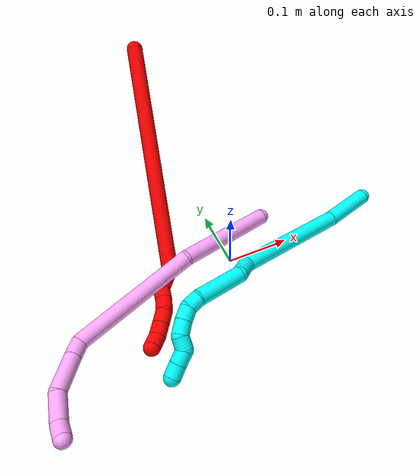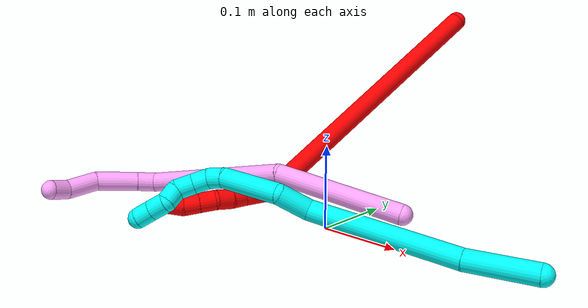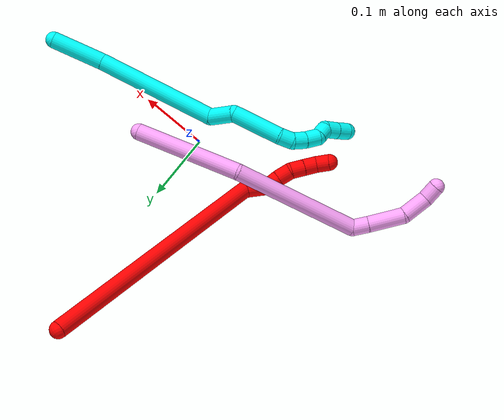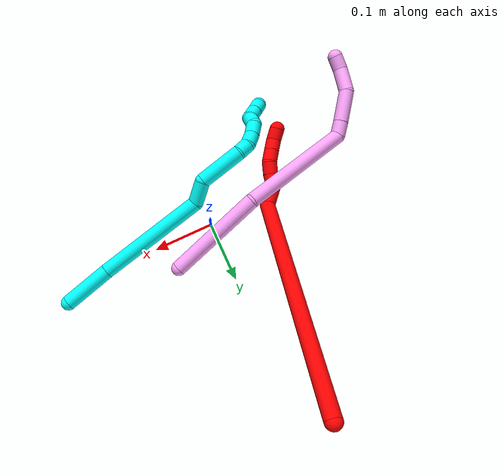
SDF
<sdf version="1.7">
 <world name="default">
  <model name="photoneo_s_sensor">
   <static>1</static>
   <pose>0 0 2 1.57079 1.57079 3.14159</pose>
   <link name="link">
    <inertial><mass>0.1</mass></inertial>
    <sensor name="sensor" type="depth">
     <update_rate>30</update_rate>
     <camera>
      <horizontal_fov>1.22</horizontal_fov>
      <image><width>1920</width><height>1200</height><format>B8G8R8</format></image>
      <clip><near>0.1</near><far>4</far></clip>
      <depth_camera><output>points</output></depth_camera>
     </camera>
     <plugin name="camera_plugin" filename="libgazebo_ros_depth_camera.so">
      <baseline>0.2</baseline>
      <alwaysOn>1</alwaysOn>
      <updateRate>0.0</updateRate>
      <cameraName>camera_ir</cameraName>
      <imageTopicName>/camera/color/image_raw</imageTopicName>
      <cameraInfoTopicName>/camera/color/camera_info</cameraInfoTopicName>
      <depthImageTopicName>/camera/depth/image_raw</depthImageTopicName>
      <depthImageCameraInfoTopicName>/camera/depth/camera_info</depthImageCameraInfoTopicName>
      <pointCloudTopicName>/camera/depth/points</pointCloudTopicName>
      <frameName>fr_optical</frameName>
      <pointCloudCutoff>0.1</pointCloudCutoff>
      <pointCloudCutoffMax>2.0</pointCloudCutoffMax>
      <distortionK1>0</distortionK1>
      <distortionK2>0</distortionK2>
      <distortionK3>0</distortionK3>
      <distortionT1>0</distortionT1>
      <distortionT2>0</distortionT2>
      <CxPrime>0</CxPrime>
      <Cx>0</Cx>
      <Cy>0</Cy>
      <focalLength>0</focalLength>
      <hackBaseline>0</hackBaseline>
     </plugin>
    </sensor>
   </link>
  </model>
  <model name="bin">
   <static>1</static>
   <link name="bottom">
    <collision name="collision-bottom">
     <pose>0 0 -0.01 0 -0 0</pose>
     <geometry><box><size>0.8 0.6 0.02</size></box></geometry>
     <surface>
      <friction><ode><mu>100</mu><mu2>100</mu2></ode></friction>
      <contact><collide_bitmask>65535</collide_bitmask></contact>
     </surface>
    </collision>
   </link>
   <link name="west_wall">
    <collision name="collision-west_wall">
     <pose>-0.41 0 0.1 0 -0 0</pose>
     <geometry><box><size>0.02 0.6 0.2</size></box></geometry>
     <surface>
      <friction><ode><mu>100</mu><mu2>100</mu2></ode></friction>
      <contact><collide_bitmask>65535</collide_bitmask></contact>
     </surface>
    </collision>
   </link>
   <link name="east_wall">
    <collision name="collision-east_wall">
     <pose>0.41 0 0.1 0 -0 0</pose>
     <geometry><box><size>0.02 0.6 0.2</size></box></geometry>
     <surface>
      <friction><ode><mu>100</mu><mu2>100</mu2></ode></friction>
      <contact><collide_bitmask>65535</collide_bitmask></contact>
     </surface>
    </collision>
   </link>
   <link name="south_wall">
    <collision name="collision-south_wall">
     <pose>0 -0.31 0.1 0 -0 0</pose>
     <geometry><box><size>0.8 0.02 0.2</size></box></geometry>
     <surface>
      <friction><ode><mu>100</mu><mu2>100</mu2></ode></friction>
      <contact><collide_bitmask>65535</collide_bitmask></contact>
     </surface>
    </collision>
   </link>
   <link name="north_wall">
    <collision name="collision-north_wall">
     <pose>0 0.31 0.1 0 -0 0</pose>
     <geometry><box><size>0.8 0.02 0.2</size></box></geometry>
     <surface>
      <friction><ode><mu>100</mu><mu2>100</mu2></ode></friction>
      <contact><collide_bitmask>65535</collide_bitmask></contact>
     </surface>
    </collision>
   </link>
  </model>
  <model name="2">
   <static>0</static>
   <link name="2">
    <collision name="collision-cylinder-e_1_1_4">
     <pose>-0.047074 -0.161714 -0.067731 1.96743 -0.262311 -0.391454</pose>
     <geometry><cylinder><radius>0.0125</radius><length>0.36307</length></cylinder></geometry>
     <surface>
      <friction><ode><mu>1.16</mu><mu2>1.16</mu2><slip1>0</slip1><slip2>0</slip2></ode></friction>
      <contact><ode><kp>1e+06</kp><kd>1</kd><max_vel>0</max_vel><min_depth>0.001</min_depth></ode></contact>
     </surface>
    </collision>
    <visual name="visual-cylinder-e_1_1_4">
     <pose>-0.047074 -0.161714 -0.067731 1.96743 -0.262311 -0.391454</pose>
     <geometry><cylinder><radius>0.0125</radius><length>0.36307</length></cylinder></geometry>
     <material><ambient>1 0 0 1</ambient></material>
    </visual>
    <collision name="collision-cylinder-e_2_4_5">
     <pose>-0.09661 -0.340525 -0.131635 1.35058 -0.139572 -0.111848</pose>
     <geometry><cylinder><radius>0.0125</radius><length>0.035385</length></cylinder></geometry>
     <surface>
      <friction><ode><mu>1.16</mu><mu2>1.16</mu2><slip1>0</slip1><slip2>0</slip2></ode></friction>
      <contact><ode><kp>1e+06</kp><kd>1</kd><max_vel>0</max_vel><min_depth>0.001</min_depth></ode></contact>
     </surface>
    </collision>
    <visual name="visual-cylinder-e_2_4_5">
     <pose>-0.09661 -0.340525 -0.131635 1.35058 -0.139572 -0.111848</pose>
     <geometry><cylinder><radius>0.0125</radius><length>0.035385</length></cylinder></geometry>
     <material><ambient>1 0 0 1</ambient></material>
    </visual>
    <collision name="collision-cylinder-e_3_5_6">
     <pose>-0.096536 -0.367256 -0.129548 1.74947 0.253436 0.302609</pose>
     <geometry><cylinder><radius>0.0125</radius><length>0.020225</length></cylinder></geometry>
     <surface>
      <friction><ode><mu>1.16</mu><mu2>1.16</mu2><slip1>0</slip1><slip2>0</slip2></ode></friction>
      <contact><ode><kp>1e+06</kp><kd>1</kd><max_vel>0</max_vel><min_depth>0.001</min_depth></ode></contact>
     </surface>
    </collision>
    <visual name="visual-cylinder-e_3_5_6">
     <pose>-0.096536 -0.367256 -0.129548 1.74947 0.253436 0.302609</pose>
     <geometry><cylinder><radius>0.0125</radius><length>0.020225</length></cylinder></geometry>
     <material><ambient>1 0 0 1</ambient></material>
    </visual>
    <collision name="collision-cylinder-e_4_6_7">
     <pose>-0.091079 -0.386931 -0.131534 1.59529 0.283042 0.289963</pose>
     <geometry><cylinder><radius>0.0125</radius><length>0.020922</length></cylinder></geometry>
     <surface>
      <friction><ode><mu>1.16</mu><mu2>1.16</mu2><slip1>0</slip1><slip2>0</slip2></ode></friction>
      <contact><ode><kp>1e+06</kp><kd>1</kd><max_vel>0</max_vel><min_depth>0.001</min_depth></ode></contact>
     </surface>
    </collision>
    <visual name="visual-cylinder-e_4_6_7">
     <pose>-0.091079 -0.386931 -0.131534 1.59529 0.283042 0.289963</pose>
     <geometry><cylinder><radius>0.0125</radius><length>0.020922</length></cylinder></geometry>
     <material><ambient>1 0 0 1</ambient></material>
    </visual>
    <collision name="collision-cylinder-e_5_7_8">
     <pose>-0.088606 -0.407045 -0.130417 1.43636 -0.044112 -0.038549</pose>
     <geometry><cylinder><radius>0.0125</radius><length>0.020349</length></cylinder></geometry>
     <surface>
      <friction><ode><mu>1.16</mu><mu2>1.16</mu2><slip1>0</slip1><slip2>0</slip2></ode></friction>
      <contact><ode><kp>1e+06</kp><kd>1</kd><max_vel>0</max_vel><min_depth>0.001</min_depth></ode></contact>
     </surface>
    </collision>
    <visual name="visual-cylinder-e_5_7_8">
     <pose>-0.088606 -0.407045 -0.130417 1.43636 -0.044112 -0.038549</pose>
     <geometry><cylinder><radius>0.0125</radius><length>0.020349</length></cylinder></geometry>
     <material><ambient>1 0 0 1</ambient></material>
    </visual>
    <collision name="collision-cylinder-e_6_8_9">
     <pose>-0.089623 -0.427004 -0.127632 1.42788 -0.056832 -0.049243</pose>
     <geometry><cylinder><radius>0.0125</radius><length>0.020009</length></cylinder></geometry>
     <surface>
      <friction><ode><mu>1.16</mu><mu2>1.16</mu2><slip1>0</slip1><slip2>0</slip2></ode></friction>
      <contact><ode><kp>1e+06</kp><kd>1</kd><max_vel>0</max_vel><min_depth>0.001</min_depth></ode></contact>
     </surface>
    </collision>
    <visual name="visual-cylinder-e_6_8_9">
     <pose>-0.089623 -0.427004 -0.127632 1.42788 -0.056832 -0.049243</pose>
     <geometry><cylinder><radius>0.0125</radius><length>0.020009</length></cylinder></geometry>
     <material><ambient>1 0 0 1</ambient></material>
    </visual>
    <collision name="collision-cylinder-e_7_9_2">
     <pose>-0.088365 -0.446067 -0.122621 1.19798 0.183294 0.125314</pose>
     <geometry><cylinder><radius>0.0125</radius><length>0.020042</length></cylinder></geometry>
     <surface>
      <friction><ode><mu>1.16</mu><mu2>1.16</mu2><slip1>0</slip1><slip2>0</slip2></ode></friction>
      <contact><ode><kp>1e+06</kp><kd>1</kd><max_vel>0</max_vel><min_depth>0.001</min_depth></ode></contact>
     </surface>
    </collision>
    <visual name="visual-cylinder-e_7_9_2">
     <pose>-0.088365 -0.446067 -0.122621 1.19798 0.183294 0.125314</pose>
     <geometry><cylinder><radius>0.0125</radius><length>0.020042</length></cylinder></geometry>
     <material><ambient>1 0 0 1</ambient></material>
    </visual>
    <collision name="collision-sphere-2">
     <pose>-0.086538 -0.455243 -0.119032 0 -0 0</pose>
     <geometry><sphere><radius>0.0125</radius></sphere></geometry>
     <surface>
      <friction><ode><mu>1.16</mu><mu2>1.16</mu2><slip1>0</slip1><slip2>0</slip2></ode></friction>
      <contact><ode><kp>1e+06</kp><kd>1</kd><max_vel>0</max_vel><min_depth>0.001</min_depth></ode></contact>
     </surface>
    </collision>
    <visual name="visual-sphere-2">
     <pose>-0.086538 -0.455243 -0.119032 0 -0 0</pose>
     <geometry><sphere><radius>0.0125</radius></sphere></geometry>
     <material><ambient>1 0 0 1</ambient></material>
    </visual>
    <collision name="collision-sphere-9">
     <pose>-0.090191 -0.436891 -0.12621 0 -0 0</pose>
     <geometry><sphere><radius>0.0125</radius></sphere></geometry>
     <surface>
      <friction><ode><mu>1.16</mu><mu2>1.16</mu2><slip1>0</slip1><slip2>0</slip2></ode></friction>
      <contact><ode><kp>1e+06</kp><kd>1</kd><max_vel>0</max_vel><min_depth>0.001</min_depth></ode></contact>
     </surface>
    </collision>
    <visual name="visual-sphere-9">
     <pose>-0.090191 -0.436891 -0.12621 0 -0 0</pose>
     <geometry><sphere><radius>0.0125</radius></sphere></geometry>
     <material><ambient>1 0 0 1</ambient></material>
    </visual>
    <collision name="collision-sphere-4">
     <pose>-0.094149 -0.323428 -0.135463 0 -0 0</pose>
     <geometry><sphere><radius>0.0125</radius></sphere></geometry>
     <surface>
      <friction><ode><mu>1.16</mu><mu2>1.16</mu2><slip1>0</slip1><slip2>0</slip2></ode></friction>
      <contact><ode><kp>1e+06</kp><kd>1</kd><max_vel>0</max_vel><min_depth>0.001</min_depth></ode></contact>
     </surface>
    </collision>
    <visual name="visual-sphere-4">
     <pose>-0.094149 -0.323428 -0.135463 0 -0 0</pose>
     <geometry><sphere><radius>0.0125</radius></sphere></geometry>
     <material><ambient>1 0 0 1</ambient></material>
    </visual>
    <collision name="collision-sphere-1">
     <geometry><sphere><radius>0.0125</radius></sphere></geometry>
     <surface>
      <friction><ode><mu>1.16</mu><mu2>1.16</mu2><slip1>0</slip1><slip2>0</slip2></ode></friction>
      <contact><ode><kp>1e+06</kp><kd>1</kd><max_vel>0</max_vel><min_depth>0.001</min_depth></ode></contact>
     </surface>
    </collision>
    <visual name="visual-sphere-1">
     <geometry><sphere><radius>0.0125</radius></sphere></geometry>
     <material><ambient>1 0 0 1</ambient></material>
    </visual>
    <collision name="collision-sphere-8">
     <pose>-0.089055 -0.417118 -0.129055 0 -0 0</pose>
     <geometry><sphere><radius>0.0125</radius></sphere></geometry>
     <surface>
      <friction><ode><mu>1.16</mu><mu2>1.16</mu2><slip1>0</slip1><slip2>0</slip2></ode></friction>
      <contact><ode><kp>1e+06</kp><kd>1</kd><max_vel>0</max_vel><min_depth>0.001</min_depth></ode></contact>
     </surface>
    </collision>
    <visual name="visual-sphere-8">
     <pose>-0.089055 -0.417118 -0.129055 0 -0 0</pose>
     <geometry><sphere><radius>0.0125</radius></sphere></geometry>
     <material><ambient>1 0 0 1</ambient></material>
    </visual>
    <collision name="collision-sphere-5">
     <pose>-0.099071 -0.357622 -0.127808 0 -0 0</pose>
     <geometry><sphere><radius>0.0125</radius></sphere></geometry>
     <surface>
      <friction><ode><mu>1.16</mu><mu2>1.16</mu2><slip1>0</slip1><slip2>0</slip2></ode></friction>
      <contact><ode><kp>1e+06</kp><kd>1</kd><max_vel>0</max_vel><min_depth>0.001</min_depth></ode></contact>
     </surface>
    </collision>
    <visual name="visual-sphere-5">
     <pose>-0.099071 -0.357622 -0.127808 0 -0 0</pose>
     <geometry><sphere><radius>0.0125</radius></sphere></geometry>
     <material><ambient>1 0 0 1</ambient></material>
    </visual>
    <collision name="collision-sphere-6">
     <pose>-0.094 -0.376889 -0.131288 0 -0 0</pose>
     <geometry><sphere><radius>0.0125</radius></sphere></geometry>
     <surface>
      <friction><ode><mu>1.16</mu><mu2>1.16</mu2><slip1>0</slip1><slip2>0</slip2></ode></friction>
      <contact><ode><kp>1e+06</kp><kd>1</kd><max_vel>0</max_vel><min_depth>0.001</min_depth></ode></contact>
     </surface>
    </collision>
    <visual name="visual-sphere-6">
     <pose>-0.094 -0.376889 -0.131288 0 -0 0</pose>
     <geometry><sphere><radius>0.0125</radius></sphere></geometry>
     <material><ambient>1 0 0 1</ambient></material>
    </visual>
    <collision name="collision-sphere-7">
     <pose>-0.088157 -0.396972 -0.13178 0 -0 0</pose>
     <geometry><sphere><radius>0.0125</radius></sphere></geometry>
     <surface>
      <friction><ode><mu>1.16</mu><mu2>1.16</mu2><slip1>0</slip1><slip2>0</slip2></ode></friction>
      <contact><ode><kp>1e+06</kp><kd>1</kd><max_vel>0</max_vel><min_depth>0.001</min_depth></ode></contact>
     </surface>
    </collision>
    <visual name="visual-sphere-7">
     <pose>-0.088157 -0.396972 -0.13178 0 -0 0</pose>
     <geometry><sphere><radius>0.0125</radius></sphere></geometry>
     <material><ambient>1 0 0 1</ambient></material>
    </visual>
    <inertial>
     <pose>-0.05947 -0.224105 -0.084572 0 -0 0</pose>
     <mass>0.5</mass>
     <inertia>
      <ixx>0.002104</ixx>
      <ixy>0</ixy>
      <ixz>0</ixz>
      <iyy>-0.002572</iyy>
      <iyz>0</iyz>
      <izz>0.004606</izz>
     </inertia>
    </inertial>
   </link>
   <pose>-0.027079 0.307935 0.219072 0.337003 -1.05977 -0.783245</pose>
  </model>
  <model name="3">
   <static>0</static>
   <link name="3">
    <collision name="collision-cylinder-e_1_1_4">
     <pose>-0.020968 -0.000789 -0.034111 3.11846 -0.551033 -3.05981</pose>
     <geometry><cylinder><radius>0.0125</radius><length>0.080095</length></cylinder></geometry>
     <surface>
      <friction><ode><mu>1.16</mu><mu2>1.16</mu2><slip1>0</slip1><slip2>0</slip2></ode></friction>
      <contact><ode><kp>1e+06</kp><kd>1</kd><max_vel>0</max_vel><min_depth>0.001</min_depth></ode></contact>
     </surface>
    </collision>
    <visual name="visual-cylinder-e_1_1_4">
     <pose>-0.020968 -0.000789 -0.034111 3.11846 -0.551033 -3.05981</pose>
     <geometry><cylinder><radius>0.0125</radius><length>0.080095</length></cylinder></geometry>
     <material><ambient>0.003922 1 0.996078 1</ambient></material>
    </visual>
    <collision name="collision-cylinder-e_2_4_5">
     <pose>-0.095569 0.005714 -0.142566 -3.04381 -0.622687 2.83982</pose>
     <geometry><cylinder><radius>0.0125</radius><length>0.183923</length></cylinder></geometry>
     <surface>
      <friction><ode><mu>1.16</mu><mu2>1.16</mu2><slip1>0</slip1><slip2>0</slip2></ode></friction>
      <contact><ode><kp>1e+06</kp><kd>1</kd><max_vel>0</max_vel><min_depth>0.001</min_depth></ode></contact>
     </surface>
    </collision>
    <visual name="visual-cylinder-e_2_4_5">
     <pose>-0.095569 0.005714 -0.142566 -3.04381 -0.622687 2.83982</pose>
     <geometry><cylinder><radius>0.0125</radius><length>0.183923</length></cylinder></geometry>
     <material><ambient>0.003922 1 0.996078 1</ambient></material>
    </visual>
    <collision name="collision-cylinder-e_3_5_6">
     <pose>-0.167815 0.009426 -0.223191 2.62343 -1.20033 -2.40262</pose>
     <geometry><cylinder><radius>0.0125</radius><length>0.039934</length></cylinder></geometry>
     <surface>
      <friction><ode><mu>1.16</mu><mu2>1.16</mu2><slip1>0</slip1><slip2>0</slip2></ode></friction>
      <contact><ode><kp>1e+06</kp><kd>1</kd><max_vel>0</max_vel><min_depth>0.001</min_depth></ode></contact>
     </surface>
    </collision>
    <visual name="visual-cylinder-e_3_5_6">
     <pose>-0.167815 0.009426 -0.223191 2.62343 -1.20033 -2.40262</pose>
     <geometry><cylinder><radius>0.0125</radius><length>0.039934</length></cylinder></geometry>
     <material><ambient>0.003922 1 0.996078 1</ambient></material>
    </visual>
    <collision name="collision-cylinder-e_4_6_7">
     <pose>-0.207806 0.008141 -0.259705 -3.06582 -0.61413 2.90363</pose>
     <geometry><cylinder><radius>0.0125</radius><length>0.074199</length></cylinder></geometry>
     <surface>
      <friction><ode><mu>1.16</mu><mu2>1.16</mu2><slip1>0</slip1><slip2>0</slip2></ode></friction>
      <contact><ode><kp>1e+06</kp><kd>1</kd><max_vel>0</max_vel><min_depth>0.001</min_depth></ode></contact>
     </surface>
    </collision>
    <visual name="visual-cylinder-e_4_6_7">
     <pose>-0.207806 0.008141 -0.259705 -3.06582 -0.61413 2.90363</pose>
     <geometry><cylinder><radius>0.0125</radius><length>0.074199</length></cylinder></geometry>
     <material><ambient>0.003922 1 0.996078 1</ambient></material>
    </visual>
    <collision name="collision-cylinder-e_5_7_8">
     <pose>-0.233387 0.008951 -0.298901 2.97738 -0.433236 -2.42592</pose>
     <geometry><cylinder><radius>0.0125</radius><length>0.020019</length></cylinder></geometry>
     <surface>
      <friction><ode><mu>1.16</mu><mu2>1.16</mu2><slip1>0</slip1><slip2>0</slip2></ode></friction>
      <contact><ode><kp>1e+06</kp><kd>1</kd><max_vel>0</max_vel><min_depth>0.001</min_depth></ode></contact>
     </surface>
    </collision>
    <visual name="visual-cylinder-e_5_7_8">
     <pose>-0.233387 0.008951 -0.298901 2.97738 -0.433236 -2.42592</pose>
     <geometry><cylinder><radius>0.0125</radius><length>0.020019</length></cylinder></geometry>
     <material><ambient>0.003922 1 0.996078 1</ambient></material>
    </visual>
    <collision name="collision-cylinder-e_6_8_9">
     <pose>-0.241061 0.001704 -0.315301 2.48244 -0.35357 -0.962642</pose>
     <geometry><cylinder><radius>0.0125</radius><length>0.020057</length></cylinder></geometry>
     <surface>
      <friction><ode><mu>1.16</mu><mu2>1.16</mu2><slip1>0</slip1><slip2>0</slip2></ode></friction>
      <contact><ode><kp>1e+06</kp><kd>1</kd><max_vel>0</max_vel><min_depth>0.001</min_depth></ode></contact>
     </surface>
    </collision>
    <visual name="visual-cylinder-e_6_8_9">
     <pose>-0.241061 0.001704 -0.315301 2.48244 -0.35357 -0.962642</pose>
     <geometry><cylinder><radius>0.0125</radius><length>0.020057</length></cylinder></geometry>
     <material><ambient>0.003922 1 0.996078 1</ambient></material>
    </visual>
    <collision name="collision-cylinder-e_7_9_10">
     <pose>-0.24876 -0.011288 -0.329388 2.31446 -0.406297 -0.877672</pose>
     <geometry><cylinder><radius>0.0125</radius><length>0.021389</length></cylinder></geometry>
     <surface>
      <friction><ode><mu>1.16</mu><mu2>1.16</mu2><slip1>0</slip1><slip2>0</slip2></ode></friction>
      <contact><ode><kp>1e+06</kp><kd>1</kd><max_vel>0</max_vel><min_depth>0.001</min_depth></ode></contact>
     </surface>
    </collision>
    <visual name="visual-cylinder-e_7_9_10">
     <pose>-0.24876 -0.011288 -0.329388 2.31446 -0.406297 -0.877672</pose>
     <geometry><cylinder><radius>0.0125</radius><length>0.021389</length></cylinder></geometry>
     <material><ambient>0.003922 1 0.996078 1</ambient></material>
    </visual>
    <collision name="collision-cylinder-e_8_10_11">
     <pose>-0.252566 -0.028129 -0.338776 1.84831 0.042066 0.055716</pose>
     <geometry><cylinder><radius>0.0125</radius><length>0.020004</length></cylinder></geometry>
     <surface>
      <friction><ode><mu>1.16</mu><mu2>1.16</mu2><slip1>0</slip1><slip2>0</slip2></ode></friction>
      <contact><ode><kp>1e+06</kp><kd>1</kd><max_vel>0</max_vel><min_depth>0.001</min_depth></ode></contact>
     </surface>
    </collision>
    <visual name="visual-cylinder-e_8_10_11">
     <pose>-0.252566 -0.028129 -0.338776 1.84831 0.042066 0.055716</pose>
     <geometry><cylinder><radius>0.0125</radius><length>0.020004</length></cylinder></geometry>
     <material><ambient>0.003922 1 0.996078 1</ambient></material>
    </visual>
    <collision name="collision-cylinder-e_9_11_12">
     <pose>-0.253533 -0.042901 -0.350134 2.60214 -0.137212 -0.487218</pose>
     <geometry><cylinder><radius>0.0125</radius><length>0.020285</length></cylinder></geometry>
     <surface>
      <friction><ode><mu>1.16</mu><mu2>1.16</mu2><slip1>0</slip1><slip2>0</slip2></ode></friction>
      <contact><ode><kp>1e+06</kp><kd>1</kd><max_vel>0</max_vel><min_depth>0.001</min_depth></ode></contact>
     </surface>
    </collision>
    <visual name="visual-cylinder-e_9_11_12">
     <pose>-0.253533 -0.042901 -0.350134 2.60214 -0.137212 -0.487218</pose>
     <geometry><cylinder><radius>0.0125</radius><length>0.020285</length></cylinder></geometry>
     <material><ambient>0.003922 1 0.996078 1</ambient></material>
    </visual>
    <collision name="collision-cylinder-e_10_12_2">
     <pose>-0.256201 -0.053535 -0.367082 2.5601 -0.12788 -0.421594</pose>
     <geometry><cylinder><radius>0.0125</radius><length>0.020095</length></cylinder></geometry>
     <surface>
      <friction><ode><mu>1.16</mu><mu2>1.16</mu2><slip1>0</slip1><slip2>0</slip2></ode></friction>
      <contact><ode><kp>1e+06</kp><kd>1</kd><max_vel>0</max_vel><min_depth>0.001</min_depth></ode></contact>
     </surface>
    </collision>
    <visual name="visual-cylinder-e_10_12_2">
     <pose>-0.256201 -0.053535 -0.367082 2.5601 -0.12788 -0.421594</pose>
     <geometry><cylinder><radius>0.0125</radius><length>0.020095</length></cylinder></geometry>
     <material><ambient>0.003922 1 0.996078 1</ambient></material>
    </visual>
    <collision name="collision-sphere-2">
     <pose>-0.257483 -0.059009 -0.37541 0 -0 0</pose>
     <geometry><sphere><radius>0.0125</radius></sphere></geometry>
     <surface>
      <friction><ode><mu>1.16</mu><mu2>1.16</mu2><slip1>0</slip1><slip2>0</slip2></ode></friction>
      <contact><ode><kp>1e+06</kp><kd>1</kd><max_vel>0</max_vel><min_depth>0.001</min_depth></ode></contact>
     </surface>
    </collision>
    <visual name="visual-sphere-2">
     <pose>-0.257483 -0.059009 -0.37541 0 -0 0</pose>
     <geometry><sphere><radius>0.0125</radius></sphere></geometry>
     <material><ambient>0.003922 1 0.996078 1</ambient></material>
    </visual>
    <collision name="collision-sphere-12">
     <pose>-0.25492 -0.048061 -0.358755 0 -0 0</pose>
     <geometry><sphere><radius>0.0125</radius></sphere></geometry>
     <surface>
      <friction><ode><mu>1.16</mu><mu2>1.16</mu2><slip1>0</slip1><slip2>0</slip2></ode></friction>
      <contact><ode><kp>1e+06</kp><kd>1</kd><max_vel>0</max_vel><min_depth>0.001</min_depth></ode></contact>
     </surface>
    </collision>
    <visual name="visual-sphere-12">
     <pose>-0.25492 -0.048061 -0.358755 0 -0 0</pose>
     <geometry><sphere><radius>0.0125</radius></sphere></geometry>
     <material><ambient>0.003922 1 0.996078 1</ambient></material>
    </visual>
    <collision name="collision-sphere-11">
     <pose>-0.252145 -0.03774 -0.341514 0 -0 0</pose>
     <geometry><sphere><radius>0.0125</radius></sphere></geometry>
     <surface>
      <friction><ode><mu>1.16</mu><mu2>1.16</mu2><slip1>0</slip1><slip2>0</slip2></ode></friction>
      <contact><ode><kp>1e+06</kp><kd>1</kd><max_vel>0</max_vel><min_depth>0.001</min_depth></ode></contact>
     </surface>
    </collision>
    <visual name="visual-sphere-11">
     <pose>-0.252145 -0.03774 -0.341514 0 -0 0</pose>
     <geometry><sphere><radius>0.0125</radius></sphere></geometry>
     <material><ambient>0.003922 1 0.996078 1</ambient></material>
    </visual>
    <collision name="collision-sphere-10">
     <pose>-0.252987 -0.018518 -0.336039 0 -0 0</pose>
     <geometry><sphere><radius>0.0125</radius></sphere></geometry>
     <surface>
      <friction><ode><mu>1.16</mu><mu2>1.16</mu2><slip1>0</slip1><slip2>0</slip2></ode></friction>
      <contact><ode><kp>1e+06</kp><kd>1</kd><max_vel>0</max_vel><min_depth>0.001</min_depth></ode></contact>
     </surface>
    </collision>
    <visual name="visual-sphere-10">
     <pose>-0.252987 -0.018518 -0.336039 0 -0 0</pose>
     <geometry><sphere><radius>0.0125</radius></sphere></geometry>
     <material><ambient>0.003922 1 0.996078 1</ambient></material>
    </visual>
    <collision name="collision-sphere-9">
     <pose>-0.244534 -0.004058 -0.322738 0 -0 0</pose>
     <geometry><sphere><radius>0.0125</radius></sphere></geometry>
     <surface>
      <friction><ode><mu>1.16</mu><mu2>1.16</mu2><slip1>0</slip1><slip2>0</slip2></ode></friction>
      <contact><ode><kp>1e+06</kp><kd>1</kd><max_vel>0</max_vel><min_depth>0.001</min_depth></ode></contact>
     </surface>
    </collision>
    <visual name="visual-sphere-9">
     <pose>-0.244534 -0.004058 -0.322738 0 -0 0</pose>
     <geometry><sphere><radius>0.0125</radius></sphere></geometry>
     <material><ambient>0.003922 1 0.996078 1</ambient></material>
    </visual>
    <collision name="collision-sphere-4">
     <pose>-0.041935 -0.001578 -0.068222 0 -0 0</pose>
     <geometry><sphere><radius>0.0125</radius></sphere></geometry>
     <surface>
      <friction><ode><mu>1.16</mu><mu2>1.16</mu2><slip1>0</slip1><slip2>0</slip2></ode></friction>
      <contact><ode><kp>1e+06</kp><kd>1</kd><max_vel>0</max_vel><min_depth>0.001</min_depth></ode></contact>
     </surface>
    </collision>
    <visual name="visual-sphere-4">
     <pose>-0.041935 -0.001578 -0.068222 0 -0 0</pose>
     <geometry><sphere><radius>0.0125</radius></sphere></geometry>
     <material><ambient>0.003922 1 0.996078 1</ambient></material>
    </visual>
    <collision name="collision-sphere-1">
     <geometry><sphere><radius>0.0125</radius></sphere></geometry>
     <surface>
      <friction><ode><mu>1.16</mu><mu2>1.16</mu2><slip1>0</slip1><slip2>0</slip2></ode></friction>
      <contact><ode><kp>1e+06</kp><kd>1</kd><max_vel>0</max_vel><min_depth>0.001</min_depth></ode></contact>
     </surface>
    </collision>
    <visual name="visual-sphere-1">
     <geometry><sphere><radius>0.0125</radius></sphere></geometry>
     <material><ambient>0.003922 1 0.996078 1</ambient></material>
    </visual>
    <collision name="collision-sphere-8">
     <pose>-0.237589 0.007466 -0.307863 0 -0 0</pose>
     <geometry><sphere><radius>0.0125</radius></sphere></geometry>
     <surface>
      <friction><ode><mu>1.16</mu><mu2>1.16</mu2><slip1>0</slip1><slip2>0</slip2></ode></friction>
      <contact><ode><kp>1e+06</kp><kd>1</kd><max_vel>0</max_vel><min_depth>0.001</min_depth></ode></contact>
     </surface>
    </collision>
    <visual name="visual-sphere-8">
     <pose>-0.237589 0.007466 -0.307863 0 -0 0</pose>
     <geometry><sphere><radius>0.0125</radius></sphere></geometry>
     <material><ambient>0.003922 1 0.996078 1</ambient></material>
    </visual>
    <collision name="collision-sphere-5">
     <pose>-0.149203 0.013007 -0.216911 0 -0 0</pose>
     <geometry><sphere><radius>0.0125</radius></sphere></geometry>
     <surface>
      <friction><ode><mu>1.16</mu><mu2>1.16</mu2><slip1>0</slip1><slip2>0</slip2></ode></friction>
      <contact><ode><kp>1e+06</kp><kd>1</kd><max_vel>0</max_vel><min_depth>0.001</min_depth></ode></contact>
     </surface>
    </collision>
    <visual name="visual-sphere-5">
     <pose>-0.149203 0.013007 -0.216911 0 -0 0</pose>
     <geometry><sphere><radius>0.0125</radius></sphere></geometry>
     <material><ambient>0.003922 1 0.996078 1</ambient></material>
    </visual>
    <collision name="collision-sphere-6">
     <pose>-0.186428 0.005846 -0.229471 0 -0 0</pose>
     <geometry><sphere><radius>0.0125</radius></sphere></geometry>
     <surface>
      <friction><ode><mu>1.16</mu><mu2>1.16</mu2><slip1>0</slip1><slip2>0</slip2></ode></friction>
      <contact><ode><kp>1e+06</kp><kd>1</kd><max_vel>0</max_vel><min_depth>0.001</min_depth></ode></contact>
     </surface>
    </collision>
    <visual name="visual-sphere-6">
     <pose>-0.186428 0.005846 -0.229471 0 -0 0</pose>
     <geometry><sphere><radius>0.0125</radius></sphere></geometry>
     <material><ambient>0.003922 1 0.996078 1</ambient></material>
    </visual>
    <collision name="collision-sphere-7">
     <pose>-0.229185 0.010436 -0.289939 0 -0 0</pose>
     <geometry><sphere><radius>0.0125</radius></sphere></geometry>
     <surface>
      <friction><ode><mu>1.16</mu><mu2>1.16</mu2><slip1>0</slip1><slip2>0</slip2></ode></friction>
      <contact><ode><kp>1e+06</kp><kd>1</kd><max_vel>0</max_vel><min_depth>0.001</min_depth></ode></contact>
     </surface>
    </collision>
    <visual name="visual-sphere-7">
     <pose>-0.229185 0.010436 -0.289939 0 -0 0</pose>
     <geometry><sphere><radius>0.0125</radius></sphere></geometry>
     <material><ambient>0.003922 1 0.996078 1</ambient></material>
    </visual>
    <inertial>
     <pose>-0.143098 -0.001137 -0.19549 0 -0 0</pose>
     <mass>0.5</mass>
     <inertia>
      <ixx>-0.000368</ixx>
      <ixy>0</ixy>
      <ixz>0</ixz>
      <iyy>0.000715</iyy>
      <iyz>0</iyz>
      <izz>0.000294</izz>
     </inertia>
    </inertial>
   </link>
   <pose>0.264374 0.021013 0.012176 0.803622 0.864825 0.911838</pose>
  </model>
  <model name="4">
   <static>0</static>
   <link name="4">
    <collision name="collision-cylinder-e_1_1_4">
     <pose>-0.055106 -0.035506 0.047024 0.646731 -0.751939 -0.263054</pose>
     <geometry><cylinder><radius>0.0125</radius><length>0.161351</length></cylinder></geometry>
     <surface>
      <friction><ode><mu>1.16</mu><mu2>1.16</mu2><slip1>0</slip1><slip2>0</slip2></ode></friction>
      <contact><ode><kp>1e+06</kp><kd>1</kd><max_vel>0</max_vel><min_depth>0.001</min_depth></ode></contact>
     </surface>
    </collision>
    <visual name="visual-cylinder-e_1_1_4">
     <pose>-0.055106 -0.035506 0.047024 0.646731 -0.751939 -0.263054</pose>
     <geometry><cylinder><radius>0.0125</radius><length>0.161351</length></cylinder></geometry>
     <material><ambient>1 0.65098 0.996078 1</ambient></material>
    </visual>
    <collision name="collision-cylinder-e_2_4_5">
     <pose>-0.185901 -0.0776 0.154581 0.108415 -0.893331 -0.051965</pose>
     <geometry><cylinder><radius>0.0125</radius><length>0.194284</length></cylinder></geometry>
     <surface>
      <friction><ode><mu>1.16</mu><mu2>1.16</mu2><slip1>0</slip1><slip2>0</slip2></ode></friction>
      <contact><ode><kp>1e+06</kp><kd>1</kd><max_vel>0</max_vel><min_depth>0.001</min_depth></ode></contact>
     </surface>
    </collision>
    <visual name="visual-cylinder-e_2_4_5">
     <pose>-0.185901 -0.0776 0.154581 0.108415 -0.893331 -0.051965</pose>
     <geometry><cylinder><radius>0.0125</radius><length>0.194284</length></cylinder></geometry>
     <material><ambient>1 0.65098 0.996078 1</ambient></material>
    </visual>
    <collision name="collision-cylinder-e_3_5_6">
     <pose>-0.272665 -0.089513 0.215492 1.49984 -1.12164 -1.05869</pose>
     <geometry><cylinder><radius>0.0125</radius><length>0.024587</length></cylinder></geometry>
     <surface>
      <friction><ode><mu>1.16</mu><mu2>1.16</mu2><slip1>0</slip1><slip2>0</slip2></ode></friction>
      <contact><ode><kp>1e+06</kp><kd>1</kd><max_vel>0</max_vel><min_depth>0.001</min_depth></ode></contact>
     </surface>
    </collision>
    <visual name="visual-cylinder-e_3_5_6">
     <pose>-0.272665 -0.089513 0.215492 1.49984 -1.12164 -1.05869</pose>
     <geometry><cylinder><radius>0.0125</radius><length>0.024587</length></cylinder></geometry>
     <material><ambient>1 0.65098 0.996078 1</ambient></material>
    </visual>
    <collision name="collision-cylinder-e_4_6_7">
     <pose>-0.308429 -0.106202 0.215664 1.58896 -1.13933 -1.15589</pose>
     <geometry><cylinder><radius>0.0125</radius><length>0.054361</length></cylinder></geometry>
     <surface>
      <friction><ode><mu>1.16</mu><mu2>1.16</mu2><slip1>0</slip1><slip2>0</slip2></ode></friction>
      <contact><ode><kp>1e+06</kp><kd>1</kd><max_vel>0</max_vel><min_depth>0.001</min_depth></ode></contact>
     </surface>
    </collision>
    <visual name="visual-cylinder-e_4_6_7">
     <pose>-0.308429 -0.106202 0.215664 1.58896 -1.13933 -1.15589</pose>
     <geometry><cylinder><radius>0.0125</radius><length>0.054361</length></cylinder></geometry>
     <material><ambient>1 0.65098 0.996078 1</ambient></material>
    </visual>
    <collision name="collision-cylinder-e_5_7_8">
     <pose>-0.351645 -0.122031 0.207348 2.63841 -1.10742 -2.35354</pose>
     <geometry><cylinder><radius>0.0125</radius><length>0.041421</length></cylinder></geometry>
     <surface>
      <friction><ode><mu>1.16</mu><mu2>1.16</mu2><slip1>0</slip1><slip2>0</slip2></ode></friction>
      <contact><ode><kp>1e+06</kp><kd>1</kd><max_vel>0</max_vel><min_depth>0.001</min_depth></ode></contact>
     </surface>
    </collision>
    <visual name="visual-cylinder-e_5_7_8">
     <pose>-0.351645 -0.122031 0.207348 2.63841 -1.10742 -2.35354</pose>
     <geometry><cylinder><radius>0.0125</radius><length>0.041421</length></cylinder></geometry>
     <material><ambient>1 0.65098 0.996078 1</ambient></material>
    </visual>
    <collision name="collision-cylinder-e_6_8_2">
     <pose>-0.37815 -0.132387 0.192488 2.42403 -0.727506 -1.58583</pose>
     <geometry><cylinder><radius>0.0125</radius><length>0.023996</length></cylinder></geometry>
     <surface>
      <friction><ode><mu>1.16</mu><mu2>1.16</mu2><slip1>0</slip1><slip2>0</slip2></ode></friction>
      <contact><ode><kp>1e+06</kp><kd>1</kd><max_vel>0</max_vel><min_depth>0.001</min_depth></ode></contact>
     </surface>
    </collision>
    <visual name="visual-cylinder-e_6_8_2">
     <pose>-0.37815 -0.132387 0.192488 2.42403 -0.727506 -1.58583</pose>
     <geometry><cylinder><radius>0.0125</radius><length>0.023996</length></cylinder></geometry>
     <material><ambient>1 0.65098 0.996078 1</ambient></material>
    </visual>
    <collision name="collision-sphere-2">
     <pose>-0.386129 -0.138279 0.185737 0 -0 0</pose>
     <geometry><sphere><radius>0.0125</radius></sphere></geometry>
     <surface>
      <friction><ode><mu>1.16</mu><mu2>1.16</mu2><slip1>0</slip1><slip2>0</slip2></ode></friction>
      <contact><ode><kp>1e+06</kp><kd>1</kd><max_vel>0</max_vel><min_depth>0.001</min_depth></ode></contact>
     </surface>
    </collision>
    <visual name="visual-sphere-2">
     <pose>-0.386129 -0.138279 0.185737 0 -0 0</pose>
     <geometry><sphere><radius>0.0125</radius></sphere></geometry>
     <material><ambient>1 0.65098 0.996078 1</ambient></material>
    </visual>
    <collision name="collision-sphere-4">
     <pose>-0.110212 -0.071011 0.094047 0 -0 0</pose>
     <geometry><sphere><radius>0.0125</radius></sphere></geometry>
     <surface>
      <friction><ode><mu>1.16</mu><mu2>1.16</mu2><slip1>0</slip1><slip2>0</slip2></ode></friction>
      <contact><ode><kp>1e+06</kp><kd>1</kd><max_vel>0</max_vel><min_depth>0.001</min_depth></ode></contact>
     </surface>
    </collision>
    <visual name="visual-sphere-4">
     <pose>-0.110212 -0.071011 0.094047 0 -0 0</pose>
     <geometry><sphere><radius>0.0125</radius></sphere></geometry>
     <material><ambient>1 0.65098 0.996078 1</ambient></material>
    </visual>
    <collision name="collision-sphere-1">
     <geometry><sphere><radius>0.0125</radius></sphere></geometry>
     <surface>
      <friction><ode><mu>1.16</mu><mu2>1.16</mu2><slip1>0</slip1><slip2>0</slip2></ode></friction>
      <contact><ode><kp>1e+06</kp><kd>1</kd><max_vel>0</max_vel><min_depth>0.001</min_depth></ode></contact>
     </surface>
    </collision>
    <visual name="visual-sphere-1">
     <geometry><sphere><radius>0.0125</radius></sphere></geometry>
     <material><ambient>1 0.65098 0.996078 1</ambient></material>
    </visual>
    <collision name="collision-sphere-8">
     <pose>-0.370171 -0.126495 0.199239 0 -0 0</pose>
     <geometry><sphere><radius>0.0125</radius></sphere></geometry>
     <surface>
      <friction><ode><mu>1.16</mu><mu2>1.16</mu2><slip1>0</slip1><slip2>0</slip2></ode></friction>
      <contact><ode><kp>1e+06</kp><kd>1</kd><max_vel>0</max_vel><min_depth>0.001</min_depth></ode></contact>
     </surface>
    </collision>
    <visual name="visual-sphere-8">
     <pose>-0.370171 -0.126495 0.199239 0 -0 0</pose>
     <geometry><sphere><radius>0.0125</radius></sphere></geometry>
     <material><ambient>1 0.65098 0.996078 1</ambient></material>
    </visual>
    <collision name="collision-sphere-5">
     <pose>-0.261591 -0.084188 0.215114 0 -0 0</pose>
     <geometry><sphere><radius>0.0125</radius></sphere></geometry>
     <surface>
      <friction><ode><mu>1.16</mu><mu2>1.16</mu2><slip1>0</slip1><slip2>0</slip2></ode></friction>
      <contact><ode><kp>1e+06</kp><kd>1</kd><max_vel>0</max_vel><min_depth>0.001</min_depth></ode></contact>
     </surface>
    </collision>
    <visual name="visual-sphere-5">
     <pose>-0.261591 -0.084188 0.215114 0 -0 0</pose>
     <geometry><sphere><radius>0.0125</radius></sphere></geometry>
     <material><ambient>1 0.65098 0.996078 1</ambient></material>
    </visual>
    <collision name="collision-sphere-6">
     <pose>-0.283739 -0.094837 0.215871 0 -0 0</pose>
     <geometry><sphere><radius>0.0125</radius></sphere></geometry>
     <surface>
      <friction><ode><mu>1.16</mu><mu2>1.16</mu2><slip1>0</slip1><slip2>0</slip2></ode></friction>
      <contact><ode><kp>1e+06</kp><kd>1</kd><max_vel>0</max_vel><min_depth>0.001</min_depth></ode></contact>
     </surface>
    </collision>
    <visual name="visual-sphere-6">
     <pose>-0.283739 -0.094837 0.215871 0 -0 0</pose>
     <geometry><sphere><radius>0.0125</radius></sphere></geometry>
     <material><ambient>1 0.65098 0.996078 1</ambient></material>
    </visual>
    <collision name="collision-sphere-7">
     <pose>-0.333118 -0.117567 0.215458 0 -0 0</pose>
     <geometry><sphere><radius>0.0125</radius></sphere></geometry>
     <surface>
      <friction><ode><mu>1.16</mu><mu2>1.16</mu2><slip1>0</slip1><slip2>0</slip2></ode></friction>
      <contact><ode><kp>1e+06</kp><kd>1</kd><max_vel>0</max_vel><min_depth>0.001</min_depth></ode></contact>
     </surface>
    </collision>
    <visual name="visual-sphere-7">
     <pose>-0.333118 -0.117567 0.215458 0 -0 0</pose>
     <geometry><sphere><radius>0.0125</radius></sphere></geometry>
     <material><ambient>1 0.65098 0.996078 1</ambient></material>
    </visual>
    <inertial>
     <pose>-0.184238 -0.074021 0.135699 0 -0 0</pose>
     <mass>0.5</mass>
     <inertia>
      <ixx>0.000511</ixx>
      <ixy>0</ixy>
      <ixz>0</ixz>
      <iyy>0.000843</iyy>
      <iyz>0</iyz>
      <izz>0.000973</izz>
     </inertia>
    </inertial>
   </link>
   <pose>0.077371 0.045437 0.024032 -1.5503 -0.368712 0.927259</pose>
  </model>
 </world>
</sdf>
